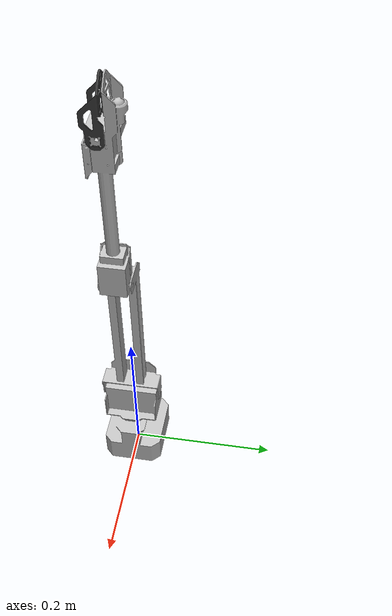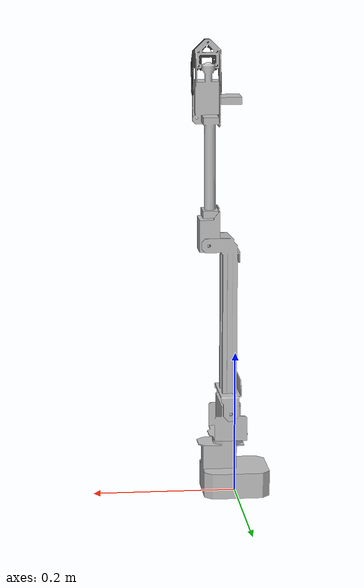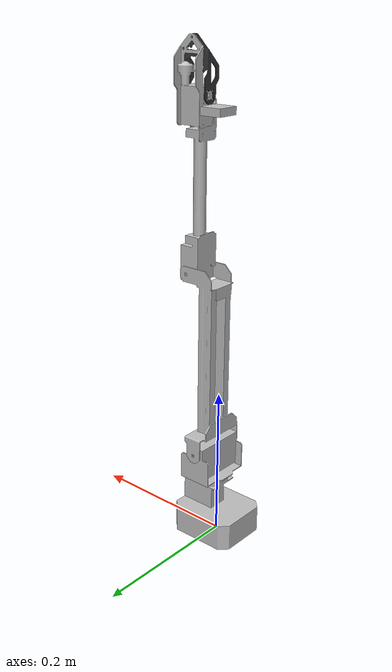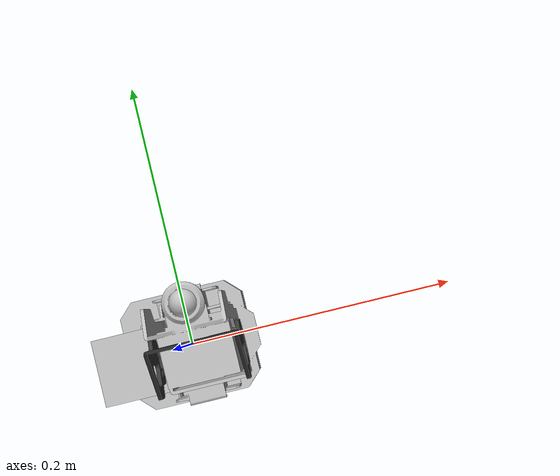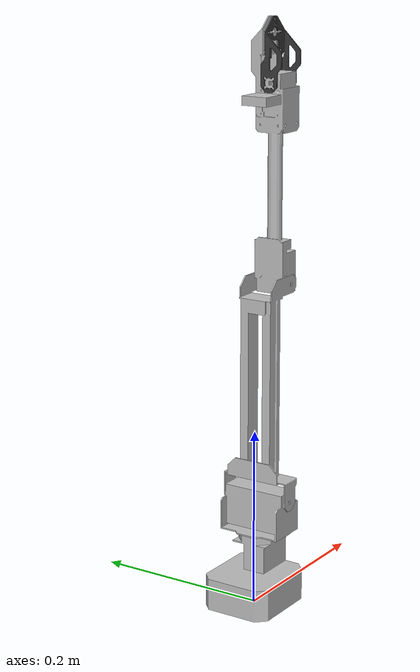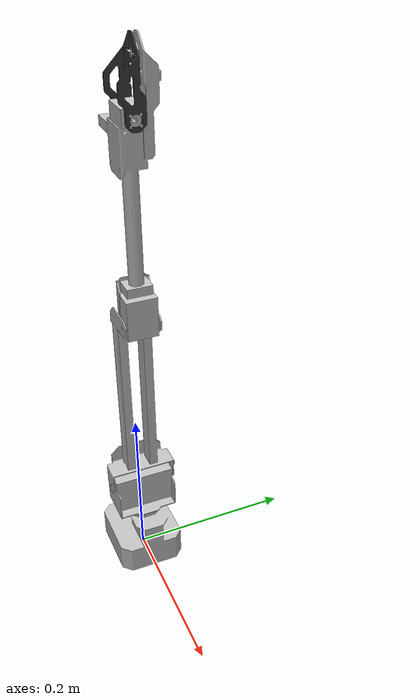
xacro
<?xml version="1.0" encoding="utf-8"?>
<robot name="roarm_description">
  <link name="base_link">
    <inertial>
      <origin xyz="0.00373847392098165 -1.52445893424664E-10 0.0264265327292804" rpy="0 0 0" />
      <mass value="0.326392759093976" />
      <inertia ixx="0.000224202818963409" ixy="-1.96773409840189E-13" ixz="-2.99224798427881E-05"
        iyy="0.000286616921839535" iyz="-3.10964171549742E-13" izz="0.000349957607258242" />
    </inertial>
    <visual>
      <origin xyz="0 0 0" rpy="0 0 0" />
      <geometry>
        <mesh filename="package://roarm_description/meshes/base_link.STL" />
      </geometry>
      <material name="">
        <color rgba="0.752941176470588 0.752941176470588 0.752941176470588 1" />
      </material>
    </visual>
    <collision>
      <origin xyz="0 0 0" rpy="0 0 0" />
      <geometry>
        <mesh filename="package://roarm_description/meshes/base_link.STL" />
      </geometry>
    </collision>
  </link>
  <link name="link1">
    <inertial>
      <origin xyz="-3.11559626639357E-12 9.70240468164796E-06 -0.0146667419724465" rpy="0 0 0" />
      <mass value="0.0928887601998397" />
      <inertia ixx="6.09210980255232E-05" ixy="-2.79207542479444E-18" ixz="4.24841739939559E-15"
        iyy="2.53493566630784E-05" iyz="2.16442830142331E-08" izz="4.88050835919342E-05" />
    </inertial>
    <visual>
      <origin xyz="0 0 0" rpy="0 0 0" />
      <geometry>
        <mesh filename="package://roarm_description/meshes/link1.STL" />
      </geometry>
      <material name="">
        <color rgba="0.752941176470588 0.752941176470588 0.752941176470588 1" />
      </material>
    </visual>
    <collision>
      <origin xyz="0 0 0" rpy="0 0 0" />
      <geometry>
        <mesh filename="package://roarm_description/meshes/link1.STL" />
      </geometry>
    </collision>
  </link>
  <joint name="base_link_to_link1" type="revolute">
    <origin xyz="0.0100000008759151 0 0.123059270461044" rpy="0 0 0" />
    <parent link="base_link" />
    <child link="link1" />
    <axis xyz="0 0 -1" />
    <limit lower="-3.1416" upper="3.1416" effort="0" velocity="0" />
  </joint>
  <link name="link2">
    <inertial>
      <origin xyz="0.122021157535333 6.61338425981053E-05 -9.50311342843365E-05" rpy="0 0 0" />
      <mass value="0.0895817175833772" />
      <inertia ixx="2.6269354271334E-05" ixy="-2.55344668379587E-06" ixz="-3.90237379833709E-09"
        iyy="0.000350369536011831" iyz="-6.82396195680563E-09" izz="0.000333056833230846" />
    </inertial>
    <visual>
      <origin xyz="0 0 0" rpy="0 0 0" />
      <geometry>
        <mesh filename="package://roarm_description/meshes/link2.STL" />
      </geometry>
      <material name="">
        <color rgba="0.752941176470588 0.752941176470588 0.752941176470588 1" />
      </material>
    </visual>
    <collision>
      <origin xyz="0 0 0" rpy="0 0 0" />
      <geometry>
        <mesh filename="package://roarm_description/meshes/link2.STL" />
      </geometry>
    </collision>
  </link>
  <joint name="link1_to_link2" type="revolute">
    <origin xyz="0 0 0" rpy="-1.5707963267949 -1.5707963267949 0" />
    <parent link="link1" />
    <child link="link2" />
    <axis xyz="0 0 -1" />
    <limit lower="-1.5708" upper="1.5708" effort="0" velocity="0" />
  </joint>
  <link name="link3">
    <inertial>
      <origin xyz="-0.00076280945740961 -0.114419656440929 -0.000177274968057332" rpy="0 0 0" />
      <mass value="0.123009044986454" />
      <inertia ixx="0.000104111883333949" ixy="1.06443789581137E-07" ixz="1.54925816846055E-07"
        iyy="1.46357151076022E-05" iyz="-1.6435520156444E-07" izz="0.000104009297710106" />
    </inertial>
    <visual>
      <origin xyz="0 0 0" rpy="0 0 0" />
      <geometry>
        <mesh filename="package://roarm_description/meshes/link3.STL" />
      </geometry>
      <material name="">
        <color rgba="0.752941176470588 0.752941176470588 0.752941176470588 1" />
      </material>
    </visual>
    <collision>
      <origin xyz="0 0 0" rpy="0 0 0" />
      <geometry>
        <mesh filename="package://roarm_description/meshes/link3.STL" />
      </geometry>
    </collision>
  </link>
  <joint name="link2_to_link3" type="revolute">
    <origin xyz="0.236815132922094 0.0300023995170449 0" rpy="0 0 1.5707963267949" />
    <parent link="link2" />
    <child link="link3" />
    <axis xyz="0 0 1" />
    <limit lower="-1" upper="3.1416" effort="0" velocity="0" />
  </joint>
  <link name="gripper_link">
    <inertial>
      <origin xyz="0.0288857415118809 -0.000776842039187049 -0.000779764534254559" rpy="0 0 0" />
      <mass value="0.00365697683069397" />
      <inertia ixx="1.15139272656909E-06" ixy="1.31250385773157E-07" ixz="-2.41954534039415E-13"
        iyy="2.33034171341163E-06" iyz="4.1392257505497E-13" izz="1.47179863096272E-06" />
    </inertial>
    <visual>
      <origin xyz="0 0 0" rpy="0 0 0" />
      <geometry>
        <mesh filename="package://roarm_description/meshes/gripper_link.STL" />
      </geometry>
      <material name="">
        <color rgba="0.219607843137255 0.219607843137255 0.219607843137255 1" />
      </material>
    </visual>
    <collision>
      <origin xyz="0 0 0" rpy="0 0 0" />
      <geometry>
        <mesh filename="package://roarm_description/meshes/gripper_link.STL" />
      </geometry>
    </collision>
  </link>
  <joint name="link3_to_gripper_link" type="revolute">
    <origin xyz="0.002906 -0.21599 -0.00066683" rpy="-1.5708 0 -1.5708" />
    <parent link="link3" />
    <child link="gripper_link" />
    <axis xyz="0 0 1" />
    <limit lower="0" upper="1.5" effort="0" velocity="0" />
  </joint>
  <link name="hand_tcp" />
  <joint name="link3_to_hand_tcp" type="fixed">
    <origin xyz="0.002 -0.2802 0" rpy="-1.5708 0 -1.5708" />
    <parent link="link3" />
    <child link="hand_tcp" />
    <axis xyz="0 0 0" />
  </joint>

  <!-- 新增相機的 link 和 joint -->
  <link name="camera_link">
    <inertial>
      <origin xyz="0 0 0" rpy="0 0 0" />
      <mass value="0.1" />
      <inertia ixx="0.0001" ixy="0" ixz="0" iyy="0.0001" iyz="0" izz="0.0001" />
    </inertial>
    <visual>
      <origin xyz="0 0 0" rpy="0 0 0" />
      <geometry>
        <box size="0.03 0.01 0.03" />
      </geometry>
      <material name="">
        <color rgba="0.752941176470588 0.752941176470588 0.752941176470588 1" />
      </material>
    </visual>
    <collision>
      <origin xyz="0 0 0" rpy="0 0 0" />
      <geometry>
        <box size="0.03 0.01 0.03" />
      </geometry>
    </collision>
  </link>
  <joint name="link3_to_camera" type="fixed">
    <origin xyz="-0.03 -0.2 0.0" rpy="0 0 0" />
    <parent link="link3" />
    <child link="camera_link" />
    <axis xyz="0 0 0" />
  </joint>
</robot>
